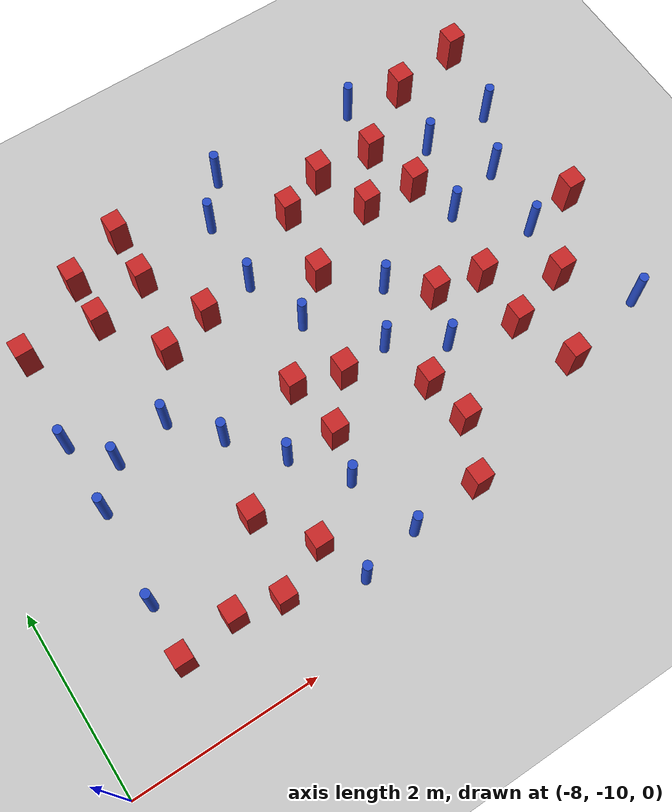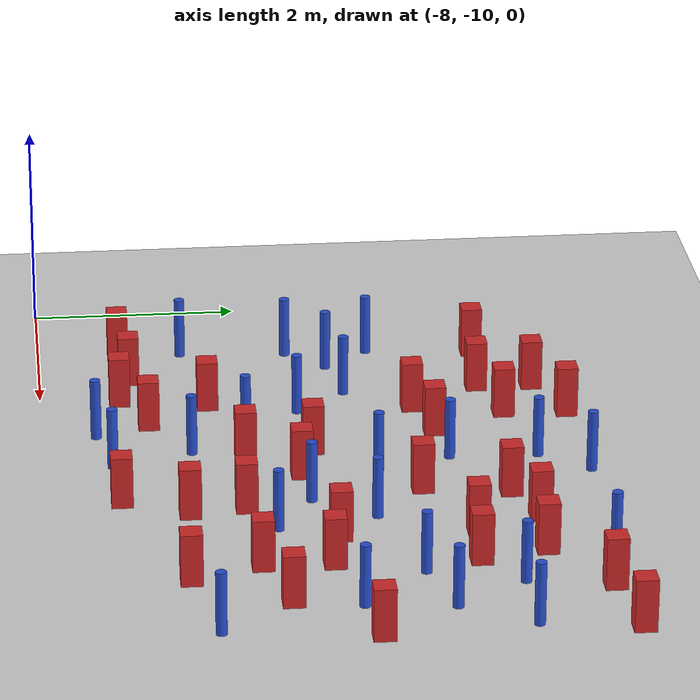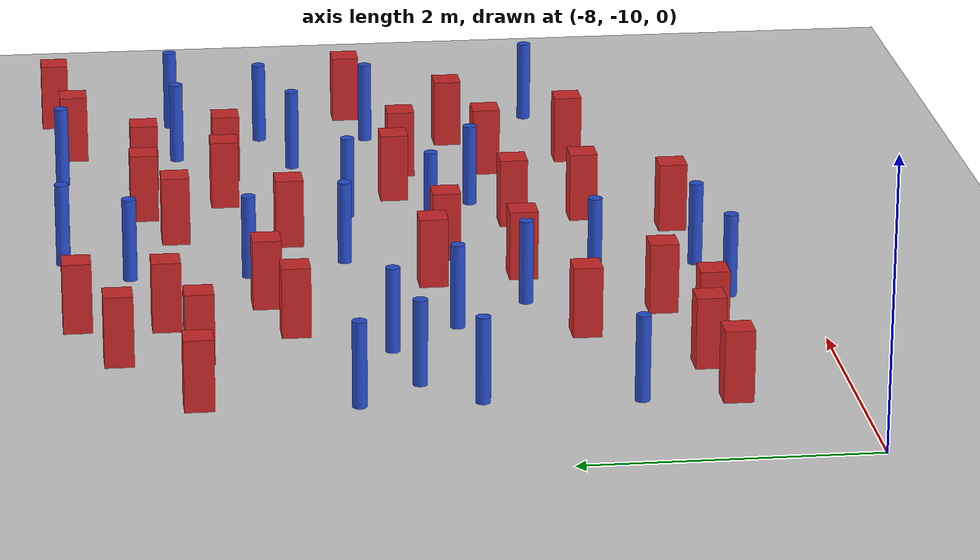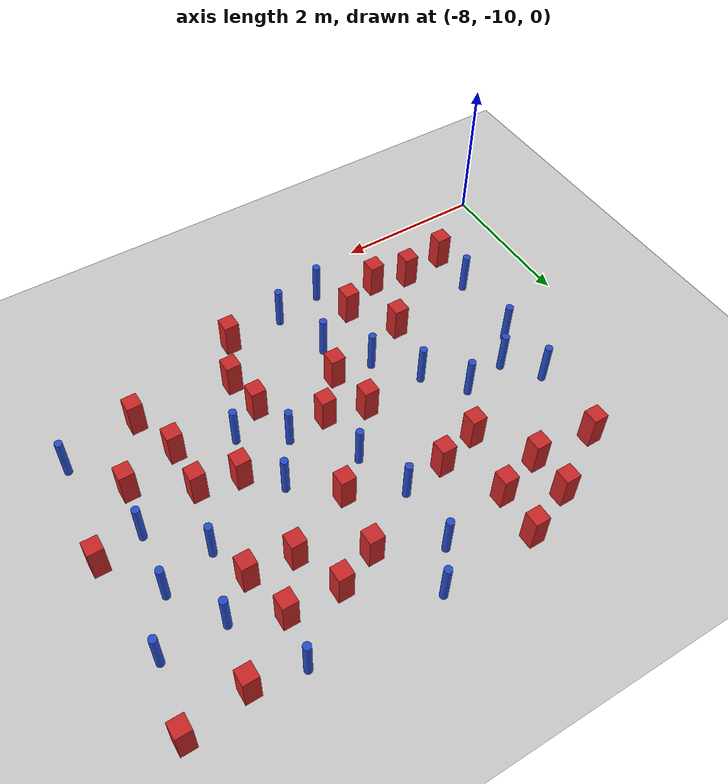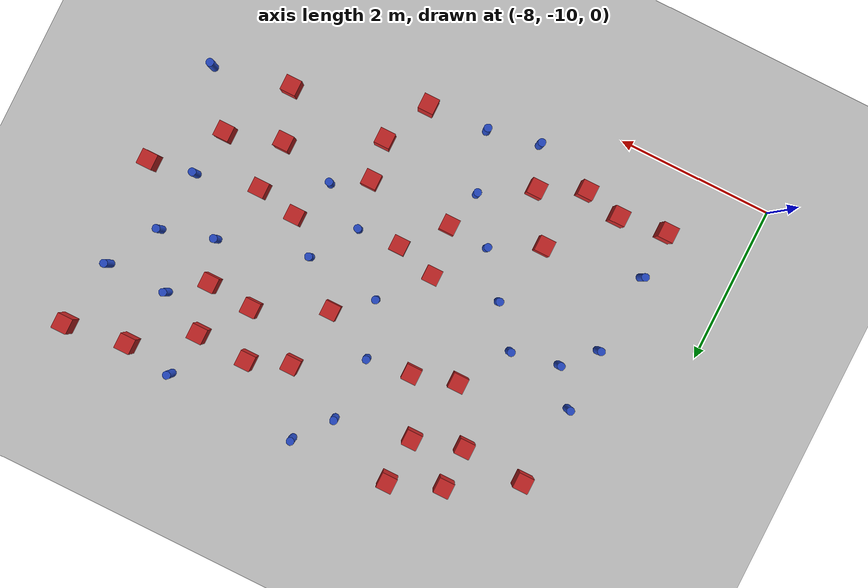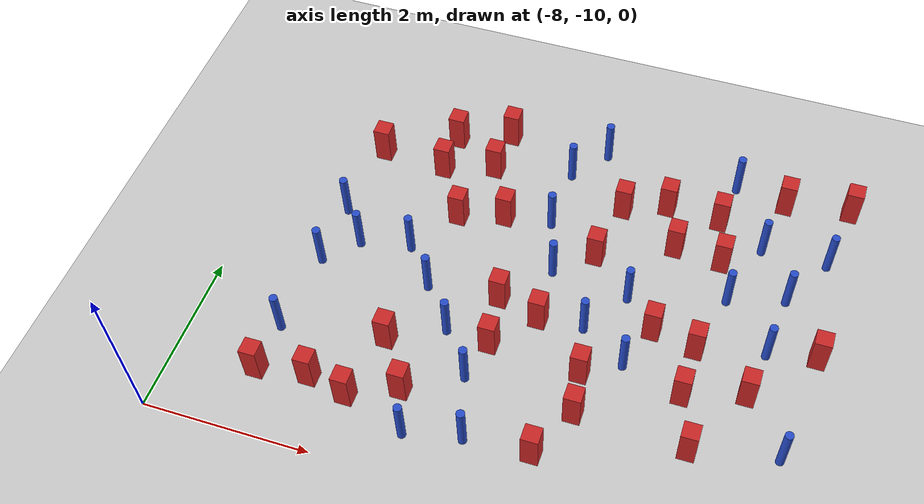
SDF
<sdf version="1.6">
 <world name="default">
  <model name="ground_plane">
   <static>1</static>
   <link name="link">
    <collision name="collision">
     <geometry><plane><normal>0 0 1</normal><size>100 100</size></plane></geometry>
     <surface><friction><ode><mu>100</mu><mu2>50</mu2></ode></friction></surface>
    </collision>
    <visual name="visual">
     <cast_shadows>0</cast_shadows>
     <geometry><plane><normal>0 0 1</normal><size>100 100</size></plane></geometry>
     <material>
      <ambient>1.0 1.0 1.0 1.0</ambient>
      <diffuse>0.8 0.8 0.8 1.0</diffuse>
      <specular>0.01 0.01 0.01 1.000000</specular>
     </material>
    </visual>
   </link>
  </model>
  <model name="square_post_obstacle12">
   <static>true</static>
   <pose>-2.2902099448 -7.47595002533 -4.36207812815e-07 3.75137919937e-06 9.77721102514e-07 2.47381364184e-05</pose>
   <link name="link">
    <pose>0 0 0.25 0 -0 0</pose>
    <inertial>
     <mass>100</mass>
     <inertia>
      <ixx>0.166667</ixx>
      <ixy>0</ixy>
      <ixz>0</ixz>
      <iyy>0.166667</iyy>
      <iyz>0</iyz>
      <izz>0.166667</izz>
     </inertia>
    </inertial>
    <collision name="collision"><geometry><box><size>.2 .2 .5</size></box></geometry></collision>
    <visual name="visual">
     <geometry><box><size>.2 .2 .5</size></box></geometry>
     <material>
      <script><name>Gazebo/Red</name><uri>file://media/materials/scripts/gazebo.material</uri></script>
     </material>
    </visual>
   </link>
  </model>
  <model name="square_post_obstacle14">
   <static>true</static>
   <pose>-1.6842799448 -5.06281002533 -4.36207812815e-07 3.75137919937e-06 9.77721102514e-07 2.47381364184e-05</pose>
   <link name="link">
    <pose>0 0 0.25 0 -0 0</pose>
    <inertial>
     <mass>100</mass>
     <inertia>
      <ixx>0.166667</ixx>
      <ixy>0</ixy>
      <ixz>0</ixz>
      <iyy>0.166667</iyy>
      <iyz>0</iyz>
      <izz>0.166667</izz>
     </inertia>
    </inertial>
    <collision name="collision"><geometry><box><size>.2 .2 .5</size></box></geometry></collision>
    <visual name="visual">
     <geometry><box><size>.2 .2 .5</size></box></geometry>
     <material>
      <script><name>Gazebo/Red</name><uri>file://media/materials/scripts/gazebo.material</uri></script>
     </material>
    </visual>
   </link>
  </model>
  <model name="square_post_obstacle16">
   <static>true</static>
   <pose>-5.7103899448 -8.39548002533 -4.36207812815e-07 3.75137919937e-06 9.77721102514e-07 2.47381364184e-05</pose>
   <link name="link">
    <pose>0 0 0.25 0 -0 0</pose>
    <inertial>
     <mass>100</mass>
     <inertia>
      <ixx>0.166667</ixx>
      <ixy>0</ixy>
      <ixz>0</ixz>
      <iyy>0.166667</iyy>
      <iyz>0</iyz>
      <izz>0.166667</izz>
     </inertia>
    </inertial>
    <collision name="collision"><geometry><box><size>.2 .2 .5</size></box></geometry></collision>
    <visual name="visual">
     <geometry><box><size>.2 .2 .5</size></box></geometry>
     <material>
      <script><name>Gazebo/Red</name><uri>file://media/materials/scripts/gazebo.material</uri></script>
     </material>
    </visual>
   </link>
  </model>
  <model name="pole_obstacle21">
   <static>true</static>
   <pose>-3.20852999024 -6.99963997922 -3.09024884848e-07 -7.19054271903e-07 -2.11315075193e-07 -1.93935509285e-07</pose>
   <link name="link">
    <pose>0 0 0.3 0 -0 0</pose>
    <inertial>
     <mass>1</mass>
     <inertia><ixx>0.145833</ixx><ixy>0</ixy><ixz>0</ixz><iyy>0.145833</iyy><iyz>0</iyz><izz>0.125</izz></inertia>
    </inertial>
    <collision name="collision">
     <geometry><cylinder><radius>0.05</radius><length>.6</length></cylinder></geometry>
    </collision>
    <visual name="visual">
     <geometry><cylinder><radius>0.05</radius><length>.6</length></cylinder></geometry>
     <material>
      <script><name>Gazebo/Blue</name><uri>file://media/materials/scripts/gazebo.material</uri></script>
     </material>
    </visual>
   </link>
  </model>
  <model name="square_post_obstacle29">
   <static>true</static>
   <pose>-5.3118799448 -8.97971002533 -4.36207812815e-07 3.75137919937e-06 9.77721102514e-07 2.47381364184e-05</pose>
   <link name="link">
    <pose>0 0 0.25 0 -0 0</pose>
    <inertial>
     <mass>100</mass>
     <inertia>
      <ixx>0.166667</ixx>
      <ixy>0</ixy>
      <ixz>0</ixz>
      <iyy>0.166667</iyy>
      <iyz>0</iyz>
      <izz>0.166667</izz>
     </inertia>
    </inertial>
    <collision name="collision"><geometry><box><size>.2 .2 .5</size></box></geometry></collision>
    <visual name="visual">
     <geometry><box><size>.2 .2 .5</size></box></geometry>
     <material>
      <script><name>Gazebo/Red</name><uri>file://media/materials/scripts/gazebo.material</uri></script>
     </material>
    </visual>
   </link>
  </model>
  <model name="pole_obstacle41">
   <static>true</static>
   <pose>-6.87850999024 -7.55243997922 -3.09024884793e-07 -7.19054271911e-07 -2.1131507516e-07 -1.93935509277e-07</pose>
   <link name="link">
    <pose>0 0 0.3 0 -0 0</pose>
    <inertial>
     <mass>1</mass>
     <inertia><ixx>0.145833</ixx><ixy>0</ixy><ixz>0</ixz><iyy>0.145833</iyy><iyz>0</iyz><izz>0.125</izz></inertia>
    </inertial>
    <collision name="collision">
     <geometry><cylinder><radius>0.05</radius><length>.6</length></cylinder></geometry>
    </collision>
    <visual name="visual">
     <geometry><cylinder><radius>0.05</radius><length>.6</length></cylinder></geometry>
     <material>
      <script><name>Gazebo/Blue</name><uri>file://media/materials/scripts/gazebo.material</uri></script>
     </material>
    </visual>
   </link>
  </model>
  <model name="pole_obstacle42">
   <static>true</static>
   <pose>-1.09930999024 -8.56443997922 -3.09024884793e-07 -7.19054271912e-07 -2.1131507515e-07 -1.93935509273e-07</pose>
   <link name="link">
    <pose>0 0 0.3 0 -0 0</pose>
    <inertial>
     <mass>1</mass>
     <inertia><ixx>0.145833</ixx><ixy>0</ixy><ixz>0</ixz><iyy>0.145833</iyy><iyz>0</iyz><izz>0.125</izz></inertia>
    </inertial>
    <collision name="collision">
     <geometry><cylinder><radius>0.05</radius><length>.6</length></cylinder></geometry>
    </collision>
    <visual name="visual">
     <geometry><cylinder><radius>0.05</radius><length>.6</length></cylinder></geometry>
     <material>
      <script><name>Gazebo/Blue</name><uri>file://media/materials/scripts/gazebo.material</uri></script>
     </material>
    </visual>
   </link>
  </model>
  <model name="square_post_obstacle31">
   <static>true</static>
   <pose>-2.4114999448 -5.55893002533 -4.36207812815e-07 3.75137919937e-06 9.77721102514e-07 2.47381364184e-05</pose>
   <link name="link">
    <pose>0 0 0.25 0 -0 0</pose>
    <inertial>
     <mass>100</mass>
     <inertia>
      <ixx>0.166667</ixx>
      <ixy>0</ixy>
      <ixz>0</ixz>
      <iyy>0.166667</iyy>
      <iyz>0</iyz>
      <izz>0.166667</izz>
     </inertia>
    </inertial>
    <collision name="collision"><geometry><box><size>.2 .2 .5</size></box></geometry></collision>
    <visual name="visual">
     <geometry><box><size>.2 .2 .5</size></box></geometry>
     <material>
      <script><name>Gazebo/Red</name><uri>file://media/materials/scripts/gazebo.material</uri></script>
     </material>
    </visual>
   </link>
  </model>
  <model name="square_post_obstacle34">
   <static>true</static>
   <pose>-5.2751999448 -4.96739002533 -4.36207812815e-07 3.75137919937e-06 9.77721102514e-07 2.47381364184e-05</pose>
   <link name="link">
    <pose>0 0 0.25 0 -0 0</pose>
    <inertial>
     <mass>100</mass>
     <inertia>
      <ixx>0.166667</ixx>
      <ixy>0</ixy>
      <ixz>0</ixz>
      <iyy>0.166667</iyy>
      <iyz>0</iyz>
      <izz>0.166667</izz>
     </inertia>
    </inertial>
    <collision name="collision"><geometry><box><size>.2 .2 .5</size></box></geometry></collision>
    <visual name="visual">
     <geometry><box><size>.2 .2 .5</size></box></geometry>
     <material>
      <script><name>Gazebo/Red</name><uri>file://media/materials/scripts/gazebo.material</uri></script>
     </material>
    </visual>
   </link>
  </model>
  <model name="pole_obstacle53">
   <static>true</static>
   <pose>-5.09432999024 -8.06619997922 -3.09024884793e-07 -7.19054271912e-07 -2.1131507513e-07 -1.93935509261e-07</pose>
   <link name="link">
    <pose>0 0 0.3 0 -0 0</pose>
    <inertial>
     <mass>1</mass>
     <inertia><ixx>0.145833</ixx><ixy>0</ixy><ixz>0</ixz><iyy>0.145833</iyy><iyz>0</iyz><izz>0.125</izz></inertia>
    </inertial>
    <collision name="collision">
     <geometry><cylinder><radius>0.05</radius><length>.6</length></cylinder></geometry>
    </collision>
    <visual name="visual">
     <geometry><cylinder><radius>0.05</radius><length>.6</length></cylinder></geometry>
     <material>
      <script><name>Gazebo/Blue</name><uri>file://media/materials/scripts/gazebo.material</uri></script>
     </material>
    </visual>
   </link>
  </model>
  <model name="pole_obstacle59">
   <static>true</static>
   <pose>-5.11085999024 -9.48831997922 -3.09024884793e-07 -7.19054271912e-07 -2.1131507513e-07 -1.93935509261e-07</pose>
   <link name="link">
    <pose>0 0 0.3 0 -0 0</pose>
    <inertial>
     <mass>1</mass>
     <inertia><ixx>0.145833</ixx><ixy>0</ixy><ixz>0</ixz><iyy>0.145833</iyy><iyz>0</iyz><izz>0.125</izz></inertia>
    </inertial>
    <collision name="collision">
     <geometry><cylinder><radius>0.05</radius><length>.6</length></cylinder></geometry>
    </collision>
    <visual name="visual">
     <geometry><cylinder><radius>0.05</radius><length>.6</length></cylinder></geometry>
     <material>
      <script><name>Gazebo/Blue</name><uri>file://media/materials/scripts/gazebo.material</uri></script>
     </material>
    </visual>
   </link>
  </model>
  <model name="pole_obstacle61">
   <static>true</static>
   <pose>-2.08497999024 -6.68337997922 -3.09024884793e-07 -7.19054271912e-07 -2.11315075134e-07 -1.93935509266e-07</pose>
   <link name="link">
    <pose>0 0 0.3 0 -0 0</pose>
    <inertial>
     <mass>1</mass>
     <inertia><ixx>0.145833</ixx><ixy>0</ixy><ixz>0</ixz><iyy>0.145833</iyy><iyz>0</iyz><izz>0.125</izz></inertia>
    </inertial>
    <collision name="collision">
     <geometry><cylinder><radius>0.05</radius><length>.6</length></cylinder></geometry>
    </collision>
    <visual name="visual">
     <geometry><cylinder><radius>0.05</radius><length>.6</length></cylinder></geometry>
     <material>
      <script><name>Gazebo/Blue</name><uri>file://media/materials/scripts/gazebo.material</uri></script>
     </material>
    </visual>
   </link>
  </model>
  <model name="square_post_obstacle48">
   <static>true</static>
   <pose>-3.3882299448 -8.69487002533 -4.36207812815e-07 3.75137919937e-06 9.77721102514e-07 2.47381364184e-05</pose>
   <link name="link">
    <pose>0 0 0.25 0 -0 0</pose>
    <inertial>
     <mass>100</mass>
     <inertia>
      <ixx>0.166667</ixx>
      <ixy>0</ixy>
      <ixz>0</ixz>
      <iyy>0.166667</iyy>
      <iyz>0</iyz>
      <izz>0.166667</izz>
     </inertia>
    </inertial>
    <collision name="collision"><geometry><box><size>.2 .2 .5</size></box></geometry></collision>
    <visual name="visual">
     <geometry><box><size>.2 .2 .5</size></box></geometry>
     <material>
      <script><name>Gazebo/Red</name><uri>file://media/materials/scripts/gazebo.material</uri></script>
     </material>
    </visual>
   </link>
  </model>
  <model name="square_post_obstacle50">
   <static>true</static>
   <pose>-5.5117599448 -6.43588002533 -4.36207812815e-07 3.75137919937e-06 9.77721102514e-07 2.47381364184e-05</pose>
   <link name="link">
    <pose>0 0 0.25 0 -0 0</pose>
    <inertial>
     <mass>100</mass>
     <inertia>
      <ixx>0.166667</ixx>
      <ixy>0</ixy>
      <ixz>0</ixz>
      <iyy>0.166667</iyy>
      <iyz>0</iyz>
      <izz>0.166667</izz>
     </inertia>
    </inertial>
    <collision name="collision"><geometry><box><size>.2 .2 .5</size></box></geometry></collision>
    <visual name="visual">
     <geometry><box><size>.2 .2 .5</size></box></geometry>
     <material>
      <script><name>Gazebo/Red</name><uri>file://media/materials/scripts/gazebo.material</uri></script>
     </material>
    </visual>
   </link>
  </model>
  <model name="square_post_obstacle51">
   <static>true</static>
   <pose>-6.7601499448 -5.70552002533 -4.36207812815e-07 3.75137919937e-06 9.77721102514e-07 2.47381364184e-05</pose>
   <link name="link">
    <pose>0 0 0.25 0 -0 0</pose>
    <inertial>
     <mass>100</mass>
     <inertia>
      <ixx>0.166667</ixx>
      <ixy>0</ixy>
      <ixz>0</ixz>
      <iyy>0.166667</iyy>
      <iyz>0</iyz>
      <izz>0.166667</izz>
     </inertia>
    </inertial>
    <collision name="collision"><geometry><box><size>.2 .2 .5</size></box></geometry></collision>
    <visual name="visual">
     <geometry><box><size>.2 .2 .5</size></box></geometry>
     <material>
      <script><name>Gazebo/Red</name><uri>file://media/materials/scripts/gazebo.material</uri></script>
     </material>
    </visual>
   </link>
  </model>
  <model name="square_post_obstacle52">
   <static>true</static>
   <pose>-4.6443899448 -7.46583002533 -4.36207812815e-07 3.75137919937e-06 9.77721102514e-07 2.47381364184e-05</pose>
   <link name="link">
    <pose>0 0 0.25 0 -0 0</pose>
    <inertial>
     <mass>100</mass>
     <inertia>
      <ixx>0.166667</ixx>
      <ixy>0</ixy>
      <ixz>0</ixz>
      <iyy>0.166667</iyy>
      <iyz>0</iyz>
      <izz>0.166667</izz>
     </inertia>
    </inertial>
    <collision name="collision"><geometry><box><size>.2 .2 .5</size></box></geometry></collision>
    <visual name="visual">
     <geometry><box><size>.2 .2 .5</size></box></geometry>
     <material>
      <script><name>Gazebo/Red</name><uri>file://media/materials/scripts/gazebo.material</uri></script>
     </material>
    </visual>
   </link>
  </model>
  <model name="square_post_obstacle59">
   <static>true</static>
   <pose>-0.893380944804 -4.94093002533 -4.36207812815e-07 3.75137919937e-06 9.77721102514e-07 2.47381364184e-05</pose>
   <link name="link">
    <pose>0 0 0.25 0 -0 0</pose>
    <inertial>
     <mass>100</mass>
     <inertia>
      <ixx>0.166667</ixx>
      <ixy>0</ixy>
      <ixz>0</ixz>
      <iyy>0.166667</iyy>
      <iyz>0</iyz>
      <izz>0.166667</izz>
     </inertia>
    </inertial>
    <collision name="collision"><geometry><box><size>.2 .2 .5</size></box></geometry></collision>
    <visual name="visual">
     <geometry><box><size>.2 .2 .5</size></box></geometry>
     <material>
      <script><name>Gazebo/Red</name><uri>file://media/materials/scripts/gazebo.material</uri></script>
     </material>
    </visual>
   </link>
  </model>
  <model name="square_post_obstacle64">
   <static>true</static>
   <pose>-5.9255899448 -5.22126002533 -4.36207812815e-07 3.75137919937e-06 9.77721102514e-07 2.47381364184e-05</pose>
   <link name="link">
    <pose>0 0 0.25 0 -0 0</pose>
    <inertial>
     <mass>100</mass>
     <inertia>
      <ixx>0.166667</ixx>
      <ixy>0</ixy>
      <ixz>0</ixz>
      <iyy>0.166667</iyy>
      <iyz>0</iyz>
      <izz>0.166667</izz>
     </inertia>
    </inertial>
    <collision name="collision"><geometry><box><size>.2 .2 .5</size></box></geometry></collision>
    <visual name="visual">
     <geometry><box><size>.2 .2 .5</size></box></geometry>
     <material>
      <script><name>Gazebo/Red</name><uri>file://media/materials/scripts/gazebo.material</uri></script>
     </material>
    </visual>
   </link>
  </model>
  <model name="pole_obstacle83">
   <static>true</static>
   <pose>-5.91183999024 -7.05888997922 -3.09024884793e-07 -7.19054271911e-07 -2.1131507516e-07 -1.93935509277e-07</pose>
   <link name="link">
    <pose>0 0 0.3 0 -0 0</pose>
    <inertial>
     <mass>1</mass>
     <inertia><ixx>0.145833</ixx><ixy>0</ixy><ixz>0</ixz><iyy>0.145833</iyy><iyz>0</iyz><izz>0.125</izz></inertia>
    </inertial>
    <collision name="collision">
     <geometry><cylinder><radius>0.05</radius><length>.6</length></cylinder></geometry>
    </collision>
    <visual name="visual">
     <geometry><cylinder><radius>0.05</radius><length>.6</length></cylinder></geometry>
     <material>
      <script><name>Gazebo/Blue</name><uri>file://media/materials/scripts/gazebo.material</uri></script>
     </material>
    </visual>
   </link>
  </model>
  <model name="pole_obstacle88">
   <static>true</static>
   <pose>-1.82991999024 -5.83072997922 -3.09024884793e-07 -7.19054271912e-07 -2.11315075134e-07 -1.93935509265e-07</pose>
   <link name="link">
    <pose>0 0 0.3 0 -0 0</pose>
    <inertial>
     <mass>1</mass>
     <inertia><ixx>0.145833</ixx><ixy>0</ixy><ixz>0</ixz><iyy>0.145833</iyy><iyz>0</iyz><izz>0.125</izz></inertia>
    </inertial>
    <collision name="collision">
     <geometry><cylinder><radius>0.05</radius><length>.6</length></cylinder></geometry>
    </collision>
    <visual name="visual">
     <geometry><cylinder><radius>0.05</radius><length>.6</length></cylinder></geometry>
     <material>
      <script><name>Gazebo/Blue</name><uri>file://media/materials/scripts/gazebo.material</uri></script>
     </material>
    </visual>
   </link>
  </model>
  <model name="square_post_obstacle84">
   <static>true</static>
   <pose>-0.927081944804 -7.18333002533 -4.36207812815e-07 3.75137919937e-06 9.77721102514e-07 2.47381364184e-05</pose>
   <link name="link">
    <pose>0 0 0.25 0 -0 0</pose>
    <inertial>
     <mass>100</mass>
     <inertia>
      <ixx>0.166667</ixx>
      <ixy>0</ixy>
      <ixz>0</ixz>
      <iyy>0.166667</iyy>
      <iyz>0</iyz>
      <izz>0.166667</izz>
     </inertia>
    </inertial>
    <collision name="collision"><geometry><box><size>.2 .2 .5</size></box></geometry></collision>
    <visual name="visual">
     <geometry><box><size>.2 .2 .5</size></box></geometry>
     <material>
      <script><name>Gazebo/Red</name><uri>file://media/materials/scripts/gazebo.material</uri></script>
     </material>
    </visual>
   </link>
  </model>
  <model name="square_post_obstacle97">
   <static>true</static>
   <pose>-3.0777399448 -5.52533002533 -4.36207812815e-07 3.75137919937e-06 9.77721102514e-07 2.47381364184e-05</pose>
   <link name="link">
    <pose>0 0 0.25 0 -0 0</pose>
    <inertial>
     <mass>100</mass>
     <inertia>
      <ixx>0.166667</ixx>
      <ixy>0</ixy>
      <ixz>0</ixz>
      <iyy>0.166667</iyy>
      <iyz>0</iyz>
      <izz>0.166667</izz>
     </inertia>
    </inertial>
    <collision name="collision"><geometry><box><size>.2 .2 .5</size></box></geometry></collision>
    <visual name="visual">
     <geometry><box><size>.2 .2 .5</size></box></geometry>
     <material>
      <script><name>Gazebo/Red</name><uri>file://media/materials/scripts/gazebo.material</uri></script>
     </material>
    </visual>
   </link>
  </model>
  <model name="pole_obstacle103">
   <static>true</static>
   <pose>-1.03543999024 -5.82544997922 -3.09024884793e-07 -7.19054271912e-07 -2.11315075133e-07 -1.93935509264e-07</pose>
   <link name="link">
    <pose>0 0 0.3 0 -0 0</pose>
    <inertial>
     <mass>1</mass>
     <inertia><ixx>0.145833</ixx><ixy>0</ixy><ixz>0</ixz><iyy>0.145833</iyy><iyz>0</iyz><izz>0.125</izz></inertia>
    </inertial>
    <collision name="collision">
     <geometry><cylinder><radius>0.05</radius><length>.6</length></cylinder></geometry>
    </collision>
    <visual name="visual">
     <geometry><cylinder><radius>0.05</radius><length>.6</length></cylinder></geometry>
     <material>
      <script><name>Gazebo/Blue</name><uri>file://media/materials/scripts/gazebo.material</uri></script>
     </material>
    </visual>
   </link>
  </model>
  <model name="square_post_obstacle100">
   <static>true</static>
   <pose>-5.3159899448 -5.57094002533 -4.36207812815e-07 3.75137919937e-06 9.77721102514e-07 2.47381364184e-05</pose>
   <link name="link">
    <pose>0 0 0.25 0 -0 0</pose>
    <inertial>
     <mass>100</mass>
     <inertia>
      <ixx>0.166667</ixx>
      <ixy>0</ixy>
      <ixz>0</ixz>
      <iyy>0.166667</iyy>
      <iyz>0</iyz>
      <izz>0.166667</izz>
     </inertia>
    </inertial>
    <collision name="collision"><geometry><box><size>.2 .2 .5</size></box></geometry></collision>
    <visual name="visual">
     <geometry><box><size>.2 .2 .5</size></box></geometry>
     <material>
      <script><name>Gazebo/Red</name><uri>file://media/materials/scripts/gazebo.material</uri></script>
     </material>
    </visual>
   </link>
  </model>
  <model name="pole_obstacle107">
   <static>true</static>
   <pose>-4.16367999024 -6.89334997922 -3.09024884793e-07 -7.19054271911e-07 -2.1131507516e-07 -1.93935509277e-07</pose>
   <link name="link">
    <pose>0 0 0.3 0 -0 0</pose>
    <inertial>
     <mass>1</mass>
     <inertia><ixx>0.145833</ixx><ixy>0</ixy><ixz>0</ixz><iyy>0.145833</iyy><iyz>0</iyz><izz>0.125</izz></inertia>
    </inertial>
    <collision name="collision">
     <geometry><cylinder><radius>0.05</radius><length>.6</length></cylinder></geometry>
    </collision>
    <visual name="visual">
     <geometry><cylinder><radius>0.05</radius><length>.6</length></cylinder></geometry>
     <material>
      <script><name>Gazebo/Blue</name><uri>file://media/materials/scripts/gazebo.material</uri></script>
     </material>
    </visual>
   </link>
  </model>
  <model name="square_post_obstacle105">
   <static>true</static>
   <pose>-2.3041699448 -8.11494002533 -4.36207812815e-07 3.75137919937e-06 9.77721102514e-07 2.47381364184e-05</pose>
   <link name="link">
    <pose>0 0 0.25 0 -0 0</pose>
    <inertial>
     <mass>100</mass>
     <inertia>
      <ixx>0.166667</ixx>
      <ixy>0</ixy>
      <ixz>0</ixz>
      <iyy>0.166667</iyy>
      <iyz>0</iyz>
      <izz>0.166667</izz>
     </inertia>
    </inertial>
    <collision name="collision"><geometry><box><size>.2 .2 .5</size></box></geometry></collision>
    <visual name="visual">
     <geometry><box><size>.2 .2 .5</size></box></geometry>
     <material>
      <script><name>Gazebo/Red</name><uri>file://media/materials/scripts/gazebo.material</uri></script>
     </material>
    </visual>
   </link>
  </model>
  <model name="square_post_obstacle114">
   <static>true</static>
   <pose>-4.9551499448 -6.27964002533 -4.36207812815e-07 3.75137919937e-06 9.77721102514e-07 2.47381364184e-05</pose>
   <link name="link">
    <pose>0 0 0.25 0 -0 0</pose>
    <inertial>
     <mass>100</mass>
     <inertia>
      <ixx>0.166667</ixx>
      <ixy>0</ixy>
      <ixz>0</ixz>
      <iyy>0.166667</iyy>
      <iyz>0</iyz>
      <izz>0.166667</izz>
     </inertia>
    </inertial>
    <collision name="collision"><geometry><box><size>.2 .2 .5</size></box></geometry></collision>
    <visual name="visual">
     <geometry><box><size>.2 .2 .5</size></box></geometry>
     <material>
      <script><name>Gazebo/Red</name><uri>file://media/materials/scripts/gazebo.material</uri></script>
     </material>
    </visual>
   </link>
  </model>
  <model name="pole_obstacle116">
   <static>true</static>
   <pose>-4.38579999024 -6.19932997922 -3.09024884793e-07 -7.19054271911e-07 -2.1131507516e-07 -1.93935509277e-07</pose>
   <link name="link">
    <pose>0 0 0.3 0 -0 0</pose>
    <inertial>
     <mass>1</mass>
     <inertia><ixx>0.145833</ixx><ixy>0</ixy><ixz>0</ixz><iyy>0.145833</iyy><iyz>0</iyz><izz>0.125</izz></inertia>
    </inertial>
    <collision name="collision">
     <geometry><cylinder><radius>0.05</radius><length>.6</length></cylinder></geometry>
    </collision>
    <visual name="visual">
     <geometry><cylinder><radius>0.05</radius><length>.6</length></cylinder></geometry>
     <material>
      <script><name>Gazebo/Blue</name><uri>file://media/materials/scripts/gazebo.material</uri></script>
     </material>
    </visual>
   </link>
  </model>
  <model name="pole_obstacle118">
   <static>true</static>
   <pose>-6.86743999024 -6.74582997922 -3.09024884793e-07 -7.19054271911e-07 -2.1131507516e-07 -1.93935509277e-07</pose>
   <link name="link">
    <pose>0 0 0.3 0 -0 0</pose>
    <inertial>
     <mass>1</mass>
     <inertia><ixx>0.145833</ixx><ixy>0</ixy><ixz>0</ixz><iyy>0.145833</iyy><iyz>0</iyz><izz>0.125</izz></inertia>
    </inertial>
    <collision name="collision">
     <geometry><cylinder><radius>0.05</radius><length>.6</length></cylinder></geometry>
    </collision>
    <visual name="visual">
     <geometry><cylinder><radius>0.05</radius><length>.6</length></cylinder></geometry>
     <material>
      <script><name>Gazebo/Blue</name><uri>file://media/materials/scripts/gazebo.material</uri></script>
     </material>
    </visual>
   </link>
  </model>
  <model name="pole_obstacle121">
   <static>true</static>
   <pose>-4.68760999024 -8.60275997922 -3.09024884793e-07 -7.19054271912e-07 -2.1131507513e-07 -1.93935509261e-07</pose>
   <link name="link">
    <pose>0 0 0.3 0 -0 0</pose>
    <inertial>
     <mass>1</mass>
     <inertia><ixx>0.145833</ixx><ixy>0</ixy><ixz>0</ixz><iyy>0.145833</iyy><iyz>0</iyz><izz>0.125</izz></inertia>
    </inertial>
    <collision name="collision">
     <geometry><cylinder><radius>0.05</radius><length>.6</length></cylinder></geometry>
    </collision>
    <visual name="visual">
     <geometry><cylinder><radius>0.05</radius><length>.6</length></cylinder></geometry>
     <material>
      <script><name>Gazebo/Blue</name><uri>file://media/materials/scripts/gazebo.material</uri></script>
     </material>
    </visual>
   </link>
  </model>
  <model name="pole_obstacle125">
   <static>true</static>
   <pose>-1.41297999024 -6.48357997922 -3.09024884793e-07 -7.19054271912e-07 -2.11315075132e-07 -1.93935509264e-07</pose>
   <link name="link">
    <pose>0 0 0.3 0 -0 0</pose>
    <inertial>
     <mass>1</mass>
     <inertia><ixx>0.145833</ixx><ixy>0</ixy><ixz>0</ixz><iyy>0.145833</iyy><iyz>0</iyz><izz>0.125</izz></inertia>
    </inertial>
    <collision name="collision">
     <geometry><cylinder><radius>0.05</radius><length>.6</length></cylinder></geometry>
    </collision>
    <visual name="visual">
     <geometry><cylinder><radius>0.05</radius><length>.6</length></cylinder></geometry>
     <material>
      <script><name>Gazebo/Blue</name><uri>file://media/materials/scripts/gazebo.material</uri></script>
     </material>
    </visual>
   </link>
  </model>
  <model name="square_post_obstacle124">
   <static>true</static>
   <pose>-5.8729799448 -9.23449002533 -4.36207812815e-07 3.75137919937e-06 9.77721102514e-07 2.47381364184e-05</pose>
   <link name="link">
    <pose>0 0 0.25 0 -0 0</pose>
    <inertial>
     <mass>100</mass>
     <inertia>
      <ixx>0.166667</ixx>
      <ixy>0</ixy>
      <ixz>0</ixz>
      <iyy>0.166667</iyy>
      <iyz>0</iyz>
      <izz>0.166667</izz>
     </inertia>
    </inertial>
    <collision name="collision"><geometry><box><size>.2 .2 .5</size></box></geometry></collision>
    <visual name="visual">
     <geometry><box><size>.2 .2 .5</size></box></geometry>
     <material>
      <script><name>Gazebo/Red</name><uri>file://media/materials/scripts/gazebo.material</uri></script>
     </material>
    </visual>
   </link>
  </model>
  <model name="square_post_obstacle130">
   <static>true</static>
   <pose>-3.6787199448 -9.30366002533 -4.36207812815e-07 3.75137919937e-06 9.77721102514e-07 2.47381364184e-05</pose>
   <link name="link">
    <pose>0 0 0.25 0 -0 0</pose>
    <inertial>
     <mass>100</mass>
     <inertia>
      <ixx>0.166667</ixx>
      <ixy>0</ixy>
      <ixz>0</ixz>
      <iyy>0.166667</iyy>
      <iyz>0</iyz>
      <izz>0.166667</izz>
     </inertia>
    </inertial>
    <collision name="collision"><geometry><box><size>.2 .2 .5</size></box></geometry></collision>
    <visual name="visual">
     <geometry><box><size>.2 .2 .5</size></box></geometry>
     <material>
      <script><name>Gazebo/Red</name><uri>file://media/materials/scripts/gazebo.material</uri></script>
     </material>
    </visual>
   </link>
  </model>
  <model name="pole_obstacle134">
   <static>true</static>
   <pose>-6.95274999024 -8.59129997922 -3.09024884793e-07 -7.19054271912e-07 -2.1131507513e-07 -1.93935509261e-07</pose>
   <link name="link">
    <pose>0 0 0.3 0 -0 0</pose>
    <inertial>
     <mass>1</mass>
     <inertia><ixx>0.145833</ixx><ixy>0</ixy><ixz>0</ixz><iyy>0.145833</iyy><iyz>0</iyz><izz>0.125</izz></inertia>
    </inertial>
    <collision name="collision">
     <geometry><cylinder><radius>0.05</radius><length>.6</length></cylinder></geometry>
    </collision>
    <visual name="visual">
     <geometry><cylinder><radius>0.05</radius><length>.6</length></cylinder></geometry>
     <material>
      <script><name>Gazebo/Blue</name><uri>file://media/materials/scripts/gazebo.material</uri></script>
     </material>
    </visual>
   </link>
  </model>
  <model name="pole_obstacle135">
   <static>true</static>
   <pose>-4.45177999024 -9.35485997922 -3.09024884793e-07 -7.19054271912e-07 -2.1131507513e-07 -1.93935509261e-07</pose>
   <link name="link">
    <pose>0 0 0.3 0 -0 0</pose>
    <inertial>
     <mass>1</mass>
     <inertia><ixx>0.145833</ixx><ixy>0</ixy><ixz>0</ixz><iyy>0.145833</iyy><iyz>0</iyz><izz>0.125</izz></inertia>
    </inertial>
    <collision name="collision">
     <geometry><cylinder><radius>0.05</radius><length>.6</length></cylinder></geometry>
    </collision>
    <visual name="visual">
     <geometry><cylinder><radius>0.05</radius><length>.6</length></cylinder></geometry>
     <material>
      <script><name>Gazebo/Blue</name><uri>file://media/materials/scripts/gazebo.material</uri></script>
     </material>
    </visual>
   </link>
  </model>
  <model name="pole_obstacle142">
   <static>true</static>
   <pose>-3.58781999024 -7.56880997922 -3.09024884793e-07 -7.19054271912e-07 -2.11315075134e-07 -1.93935509266e-07</pose>
   <link name="link">
    <pose>0 0 0.3 0 -0 0</pose>
    <inertial>
     <mass>1</mass>
     <inertia><ixx>0.145833</ixx><ixy>0</ixy><ixz>0</ixz><iyy>0.145833</iyy><iyz>0</iyz><izz>0.125</izz></inertia>
    </inertial>
    <collision name="collision">
     <geometry><cylinder><radius>0.05</radius><length>.6</length></cylinder></geometry>
    </collision>
    <visual name="visual">
     <geometry><cylinder><radius>0.05</radius><length>.6</length></cylinder></geometry>
     <material>
      <script><name>Gazebo/Blue</name><uri>file://media/materials/scripts/gazebo.material</uri></script>
     </material>
    </visual>
   </link>
  </model>
  <model name="square_post_obstacle141">
   <static>true</static>
   <pose>-6.9717899448 -9.20947002533 -4.36207812815e-07 3.75137919937e-06 9.77721102514e-07 2.47381364184e-05</pose>
   <link name="link">
    <pose>0 0 0.25 0 -0 0</pose>
    <inertial>
     <mass>100</mass>
     <inertia>
      <ixx>0.166667</ixx>
      <ixy>0</ixy>
      <ixz>0</ixz>
      <iyy>0.166667</iyy>
      <iyz>0</iyz>
      <izz>0.166667</izz>
     </inertia>
    </inertial>
    <collision name="collision"><geometry><box><size>.2 .2 .5</size></box></geometry></collision>
    <visual name="visual">
     <geometry><box><size>.2 .2 .5</size></box></geometry>
     <material>
      <script><name>Gazebo/Red</name><uri>file://media/materials/scripts/gazebo.material</uri></script>
     </material>
    </visual>
   </link>
  </model>
  <model name="pole_obstacle148">
   <static>true</static>
   <pose>-2.31629999024 -4.95695997922 -3.09024884793e-07 -7.19054271912e-07 -2.11315075134e-07 -1.93935509266e-07</pose>
   <link name="link">
    <pose>0 0 0.3 0 -0 0</pose>
    <inertial>
     <mass>1</mass>
     <inertia><ixx>0.145833</ixx><ixy>0</ixy><ixz>0</ixz><iyy>0.145833</iyy><iyz>0</iyz><izz>0.125</izz></inertia>
    </inertial>
    <collision name="collision">
     <geometry><cylinder><radius>0.05</radius><length>.6</length></cylinder></geometry>
    </collision>
    <visual name="visual">
     <geometry><cylinder><radius>0.05</radius><length>.6</length></cylinder></geometry>
     <material>
      <script><name>Gazebo/Blue</name><uri>file://media/materials/scripts/gazebo.material</uri></script>
     </material>
    </visual>
   </link>
  </model>
  <model name="pole_obstacle149">
   <static>true</static>
   <pose>-1.49720999024 -7.28803997922 -3.09024884793e-07 -7.19054271912e-07 -2.11315075134e-07 -1.93935509265e-07</pose>
   <link name="link">
    <pose>0 0 0.3 0 -0 0</pose>
    <inertial>
     <mass>1</mass>
     <inertia><ixx>0.145833</ixx><ixy>0</ixy><ixz>0</ixz><iyy>0.145833</iyy><iyz>0</iyz><izz>0.125</izz></inertia>
    </inertial>
    <collision name="collision">
     <geometry><cylinder><radius>0.05</radius><length>.6</length></cylinder></geometry>
    </collision>
    <visual name="visual">
     <geometry><cylinder><radius>0.05</radius><length>.6</length></cylinder></geometry>
     <material>
      <script><name>Gazebo/Blue</name><uri>file://media/materials/scripts/gazebo.material</uri></script>
     </material>
    </visual>
   </link>
  </model>
  <model name="square_post_obstacle142">
   <static>true</static>
   <pose>-2.8455399448 -6.12545002533 -4.36207812815e-07 3.75137919937e-06 9.77721102514e-07 2.47381364184e-05</pose>
   <link name="link">
    <pose>0 0 0.25 0 -0 0</pose>
    <inertial>
     <mass>100</mass>
     <inertia>
      <ixx>0.166667</ixx>
      <ixy>0</ixy>
      <ixz>0</ixz>
      <iyy>0.166667</iyy>
      <iyz>0</iyz>
      <izz>0.166667</izz>
     </inertia>
    </inertial>
    <collision name="collision"><geometry><box><size>.2 .2 .5</size></box></geometry></collision>
    <visual name="visual">
     <geometry><box><size>.2 .2 .5</size></box></geometry>
     <material>
      <script><name>Gazebo/Red</name><uri>file://media/materials/scripts/gazebo.material</uri></script>
     </material>
    </visual>
   </link>
  </model>
  <model name="square_post_obstacle149">
   <static>true</static>
   <pose>-3.7307599448 -6.53025002533 -4.36207812815e-07 3.75137919937e-06 9.77721102514e-07 2.47381364184e-05</pose>
   <link name="link">
    <pose>0 0 0.25 0 -0 0</pose>
    <inertial>
     <mass>100</mass>
     <inertia>
      <ixx>0.166667</ixx>
      <ixy>0</ixy>
      <ixz>0</ixz>
      <iyy>0.166667</iyy>
      <iyz>0</iyz>
      <izz>0.166667</izz>
     </inertia>
    </inertial>
    <collision name="collision"><geometry><box><size>.2 .2 .5</size></box></geometry></collision>
    <visual name="visual">
     <geometry><box><size>.2 .2 .5</size></box></geometry>
     <material>
      <script><name>Gazebo/Red</name><uri>file://media/materials/scripts/gazebo.material</uri></script>
     </material>
    </visual>
   </link>
  </model>
  <model name="pole_obstacle161">
   <static>true</static>
   <pose>-6.52538999024 -7.17763997922 -3.09024884793e-07 -7.19054271911e-07 -2.1131507516e-07 -1.93935509277e-07</pose>
   <link name="link">
    <pose>0 0 0.3 0 -0 0</pose>
    <inertial>
     <mass>1</mass>
     <inertia><ixx>0.145833</ixx><ixy>0</ixy><ixz>0</ixz><iyy>0.145833</iyy><iyz>0</iyz><izz>0.125</izz></inertia>
    </inertial>
    <collision name="collision">
     <geometry><cylinder><radius>0.05</radius><length>.6</length></cylinder></geometry>
    </collision>
    <visual name="visual">
     <geometry><cylinder><radius>0.05</radius><length>.6</length></cylinder></geometry>
     <material>
      <script><name>Gazebo/Blue</name><uri>file://media/materials/scripts/gazebo.material</uri></script>
     </material>
    </visual>
   </link>
  </model>
  <model name="pole_obstacle163">
   <static>true</static>
   <pose>-5.51593999024 -7.54259997922 -3.09024884793e-07 -7.19054271911e-07 -2.1131507516e-07 -1.93935509277e-07</pose>
   <link name="link">
    <pose>0 0 0.3 0 -0 0</pose>
    <inertial>
     <mass>1</mass>
     <inertia><ixx>0.145833</ixx><ixy>0</ixy><ixz>0</ixz><iyy>0.145833</iyy><iyz>0</iyz><izz>0.125</izz></inertia>
    </inertial>
    <collision name="collision">
     <geometry><cylinder><radius>0.05</radius><length>.6</length></cylinder></geometry>
    </collision>
    <visual name="visual">
     <geometry><cylinder><radius>0.05</radius><length>.6</length></cylinder></geometry>
     <material>
      <script><name>Gazebo/Blue</name><uri>file://media/materials/scripts/gazebo.material</uri></script>
     </material>
    </visual>
   </link>
  </model>
  <model name="square_post_obstacle154">
   <static>true</static>
   <pose>-1.6026799448 -7.90210002533 -4.36207812815e-07 3.75137919937e-06 9.77721102514e-07 2.47381364184e-05</pose>
   <link name="link">
    <pose>0 0 0.25 0 -0 0</pose>
    <inertial>
     <mass>100</mass>
     <inertia>
      <ixx>0.166667</ixx>
      <ixy>0</ixy>
      <ixz>0</ixz>
      <iyy>0.166667</iyy>
      <iyz>0</iyz>
      <izz>0.166667</izz>
     </inertia>
    </inertial>
    <collision name="collision"><geometry><box><size>.2 .2 .5</size></box></geometry></collision>
    <visual name="visual">
     <geometry><box><size>.2 .2 .5</size></box></geometry>
     <material>
      <script><name>Gazebo/Red</name><uri>file://media/materials/scripts/gazebo.material</uri></script>
     </material>
    </visual>
   </link>
  </model>
  <model name="square_post_obstacle156">
   <static>true</static>
   <pose>-3.4622099448 -8.17617002533 -4.36207812815e-07 3.75137919937e-06 9.77721102514e-07 2.47381364184e-05</pose>
   <link name="link">
    <pose>0 0 0.25 0 -0 0</pose>
    <inertial>
     <mass>100</mass>
     <inertia>
      <ixx>0.166667</ixx>
      <ixy>0</ixy>
      <ixz>0</ixz>
      <iyy>0.166667</iyy>
      <iyz>0</iyz>
      <izz>0.166667</izz>
     </inertia>
    </inertial>
    <collision name="collision"><geometry><box><size>.2 .2 .5</size></box></geometry></collision>
    <visual name="visual">
     <geometry><box><size>.2 .2 .5</size></box></geometry>
     <material>
      <script><name>Gazebo/Red</name><uri>file://media/materials/scripts/gazebo.material</uri></script>
     </material>
    </visual>
   </link>
  </model>
  <model name="square_post_obstacle157">
   <static>true</static>
   <pose>-3.5955899448 -5.72563002533 -4.36207812815e-07 3.75137919937e-06 9.77721102514e-07 2.47381364184e-05</pose>
   <link name="link">
    <pose>0 0 0.25 0 -0 0</pose>
    <inertial>
     <mass>100</mass>
     <inertia>
      <ixx>0.166667</ixx>
      <ixy>0</ixy>
      <ixz>0</ixz>
      <iyy>0.166667</iyy>
      <iyz>0</iyz>
      <izz>0.166667</izz>
     </inertia>
    </inertial>
    <collision name="collision"><geometry><box><size>.2 .2 .5</size></box></geometry></collision>
    <visual name="visual">
     <geometry><box><size>.2 .2 .5</size></box></geometry>
     <material>
      <script><name>Gazebo/Red</name><uri>file://media/materials/scripts/gazebo.material</uri></script>
     </material>
    </visual>
   </link>
  </model>
  <model name="square_post_obstacle158">
   <static>true</static>
   <pose>-5.9364399448 -5.75828002533 -4.36207812815e-07 3.75137919937e-06 9.77721102514e-07 2.47381364184e-05</pose>
   <link name="link">
    <pose>0 0 0.25 0 -0 0</pose>
    <inertial>
     <mass>100</mass>
     <inertia>
      <ixx>0.166667</ixx>
      <ixy>0</ixy>
      <ixz>0</ixz>
      <iyy>0.166667</iyy>
      <iyz>0</iyz>
      <izz>0.166667</izz>
     </inertia>
    </inertial>
    <collision name="collision"><geometry><box><size>.2 .2 .5</size></box></geometry></collision>
    <visual name="visual">
     <geometry><box><size>.2 .2 .5</size></box></geometry>
     <material>
      <script><name>Gazebo/Red</name><uri>file://media/materials/scripts/gazebo.material</uri></script>
     </material>
    </visual>
   </link>
  </model>
  <model name="pole_obstacle183">
   <static>true</static>
   <pose>-4.00561999024 -4.91032997922 -3.09024884793e-07 -7.19054271911e-07 -2.11315075165e-07 -1.9393550928e-07</pose>
   <link name="link">
    <pose>0 0 0.3 0 -0 0</pose>
    <inertial>
     <mass>1</mass>
     <inertia><ixx>0.145833</ixx><ixy>0</ixy><ixz>0</ixz><iyy>0.145833</iyy><iyz>0</iyz><izz>0.125</izz></inertia>
    </inertial>
    <collision name="collision">
     <geometry><cylinder><radius>0.05</radius><length>.6</length></cylinder></geometry>
    </collision>
    <visual name="visual">
     <geometry><cylinder><radius>0.05</radius><length>.6</length></cylinder></geometry>
     <material>
      <script><name>Gazebo/Blue</name><uri>file://media/materials/scripts/gazebo.material</uri></script>
     </material>
    </visual>
   </link>
  </model>
  <model name="square_post_obstacle193">
   <static>true</static>
   <pose>-6.3615999448 -9.12556002533 -4.36207812815e-07 3.75137919937e-06 9.77721102514e-07 2.47381364184e-05</pose>
   <link name="link">
    <pose>0 0 0.25 0 -0 0</pose>
    <inertial>
     <mass>100</mass>
     <inertia>
      <ixx>0.166667</ixx>
      <ixy>0</ixy>
      <ixz>0</ixz>
      <iyy>0.166667</iyy>
      <iyz>0</iyz>
      <izz>0.166667</izz>
     </inertia>
    </inertial>
    <collision name="collision"><geometry><box><size>.2 .2 .5</size></box></geometry></collision>
    <visual name="visual">
     <geometry><box><size>.2 .2 .5</size></box></geometry>
     <material>
      <script><name>Gazebo/Red</name><uri>file://media/materials/scripts/gazebo.material</uri></script>
     </material>
    </visual>
   </link>
  </model>
  <model name="pole_obstacle192">
   <static>true</static>
   <pose>-4.36203999024 -5.36651997922 -3.09024884793e-07 -7.19054271911e-07 -2.1131507516e-07 -1.93935509277e-07</pose>
   <link name="link">
    <pose>0 0 0.3 0 -0 0</pose>
    <inertial>
     <mass>1</mass>
     <inertia><ixx>0.145833</ixx><ixy>0</ixy><ixz>0</ixz><iyy>0.145833</iyy><iyz>0</iyz><izz>0.125</izz></inertia>
    </inertial>
    <collision name="collision">
     <geometry><cylinder><radius>0.05</radius><length>.6</length></cylinder></geometry>
    </collision>
    <visual name="visual">
     <geometry><cylinder><radius>0.05</radius><length>.6</length></cylinder></geometry>
     <material>
      <script><name>Gazebo/Blue</name><uri>file://media/materials/scripts/gazebo.material</uri></script>
     </material>
    </visual>
   </link>
  </model>
  <model name="square_post_obstacle202">
   <static>true</static>
   <pose>-4.1241899448 -7.61446002533 -4.36207812815e-07 3.75137919937e-06 9.77721102514e-07 2.47381364184e-05</pose>
   <link name="link">
    <pose>0 0 0.25 0 -0 0</pose>
    <inertial>
     <mass>100</mass>
     <inertia>
      <ixx>0.166667</ixx>
      <ixy>0</ixy>
      <ixz>0</ixz>
      <iyy>0.166667</iyy>
      <iyz>0</iyz>
      <izz>0.166667</izz>
     </inertia>
    </inertial>
    <collision name="collision"><geometry><box><size>.2 .2 .5</size></box></geometry></collision>
    <visual name="visual">
     <geometry><box><size>.2 .2 .5</size></box></geometry>
     <material>
      <script><name>Gazebo/Red</name><uri>file://media/materials/scripts/gazebo.material</uri></script>
     </material>
    </visual>
   </link>
  </model>
  <model name="square_post_obstacle208">
   <static>true</static>
   <pose>-4.5595199448 -8.10833002533 -4.36207812815e-07 3.75137919937e-06 9.77721102514e-07 2.47381364184e-05</pose>
   <link name="link">
    <pose>0 0 0.25 0 -0 0</pose>
    <inertial>
     <mass>100</mass>
     <inertia>
      <ixx>0.166667</ixx>
      <ixy>0</ixy>
      <ixz>0</ixz>
      <iyy>0.166667</iyy>
      <iyz>0</iyz>
      <izz>0.166667</izz>
     </inertia>
    </inertial>
    <collision name="collision"><geometry><box><size>.2 .2 .5</size></box></geometry></collision>
    <visual name="visual">
     <geometry><box><size>.2 .2 .5</size></box></geometry>
     <material>
      <script><name>Gazebo/Red</name><uri>file://media/materials/scripts/gazebo.material</uri></script>
     </material>
    </visual>
   </link>
  </model>
  <model name="square_post_obstacle211">
   <static>true</static>
   <pose>-2.2596399448 -6.17175002533 -4.36207812815e-07 3.75137919937e-06 9.77721102514e-07 2.47381364184e-05</pose>
   <link name="link">
    <pose>0 0 0.25 0 -0 0</pose>
    <inertial>
     <mass>100</mass>
     <inertia>
      <ixx>0.166667</ixx>
      <ixy>0</ixy>
      <ixz>0</ixz>
      <iyy>0.166667</iyy>
      <iyz>0</iyz>
      <izz>0.166667</izz>
     </inertia>
    </inertial>
    <collision name="collision"><geometry><box><size>.2 .2 .5</size></box></geometry></collision>
    <visual name="visual">
     <geometry><box><size>.2 .2 .5</size></box></geometry>
     <material>
      <script><name>Gazebo/Red</name><uri>file://media/materials/scripts/gazebo.material</uri></script>
     </material>
    </visual>
   </link>
  </model>
  <model name="square_post_obstacle223">
   <static>true</static>
   <pose>-2.8226299448 -7.37201002533 -4.36207812815e-07 3.75137919937e-06 9.77721102514e-07 2.47381364184e-05</pose>
   <link name="link">
    <pose>0 0 0.25 0 -0 0</pose>
    <inertial>
     <mass>100</mass>
     <inertia>
      <ixx>0.166667</ixx>
      <ixy>0</ixy>
      <ixz>0</ixz>
      <iyy>0.166667</iyy>
      <iyz>0</iyz>
      <izz>0.166667</izz>
     </inertia>
    </inertial>
    <collision name="collision"><geometry><box><size>.2 .2 .5</size></box></geometry></collision>
    <visual name="visual">
     <geometry><box><size>.2 .2 .5</size></box></geometry>
     <material>
      <script><name>Gazebo/Red</name><uri>file://media/materials/scripts/gazebo.material</uri></script>
     </material>
    </visual>
   </link>
  </model>
  <model name="square_post_obstacle226">
   <static>true</static>
   <pose>-2.0830799448 -8.76214002533 -4.36207812815e-07 3.75137919937e-06 9.77721102514e-07 2.47381364184e-05</pose>
   <link name="link">
    <pose>0 0 0.25 0 -0 0</pose>
    <inertial>
     <mass>100</mass>
     <inertia>
      <ixx>0.166667</ixx>
      <ixy>0</ixy>
      <ixz>0</ixz>
      <iyy>0.166667</iyy>
      <iyz>0</iyz>
      <izz>0.166667</izz>
     </inertia>
    </inertial>
    <collision name="collision"><geometry><box><size>.2 .2 .5</size></box></geometry></collision>
    <visual name="visual">
     <geometry><box><size>.2 .2 .5</size></box></geometry>
     <material>
      <script><name>Gazebo/Red</name><uri>file://media/materials/scripts/gazebo.material</uri></script>
     </material>
    </visual>
   </link>
  </model>
  <model name="pole_obstacle211">
   <static>true</static>
   <pose>-3.02753999024 -7.91678997922 -3.09024884793e-07 -7.19054271912e-07 -2.11315075134e-07 -1.93935509266e-07</pose>
   <link name="link">
    <pose>0 0 0.3 0 -0 0</pose>
    <inertial>
     <mass>1</mass>
     <inertia><ixx>0.145833</ixx><ixy>0</ixy><ixz>0</ixz><iyy>0.145833</iyy><iyz>0</iyz><izz>0.125</izz></inertia>
    </inertial>
    <collision name="collision">
     <geometry><cylinder><radius>0.05</radius><length>.6</length></cylinder></geometry>
    </collision>
    <visual name="visual">
     <geometry><cylinder><radius>0.05</radius><length>.6</length></cylinder></geometry>
     <material>
      <script><name>Gazebo/Blue</name><uri>file://media/materials/scripts/gazebo.material</uri></script>
     </material>
    </visual>
   </link>
  </model>
 </world>
</sdf>
